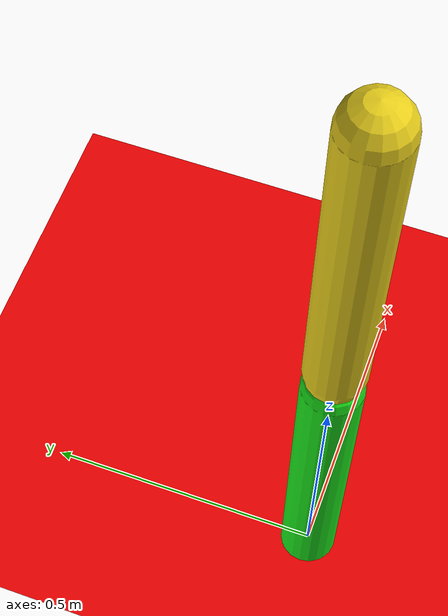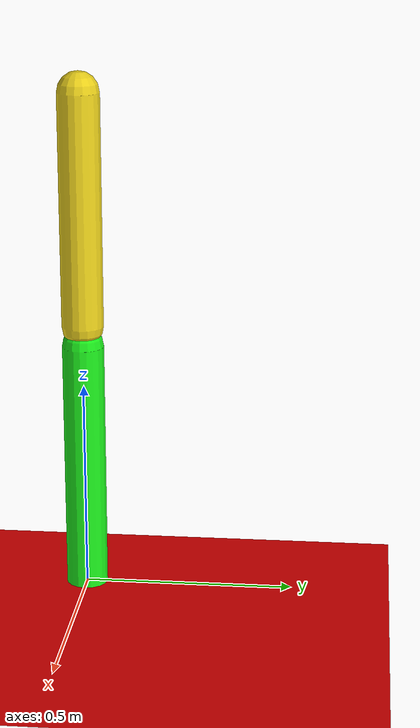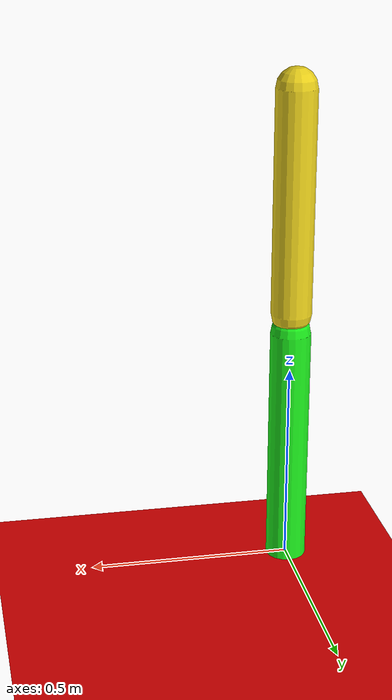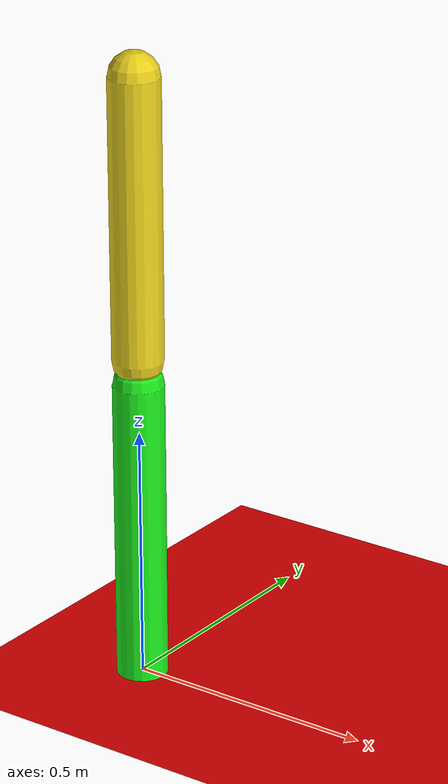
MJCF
<mujoco model="twolinkman">
<compiler coordinate="global" inertiafromgeom="true" angle="degree"/>
<default>
    <joint limited="true" damping="1" armature="0"/>
    <motor ctrlrange="-.4 .4" ctrllimited="true"/>
</default>
<option timestep="0.002" iterations="50" solver="PGS">
    <flag energy="enable"/>
</option>
<worldbody>
    <light diffuse=".5 .5 .5" pos="0 0 3" dir="0 0 -1"/>
    <geom type="plane" size="1 1 0.1" rgba=".9 0 0 1"/>
    <body>
        <joint name="joint1" type="hinge" pos="0 0 0" axis="0 1 0" range="-90 90" damping="5" stiffness="20" armature="0.02"/>
        <geom name="link1" type="capsule" fromto="0 0 0 0 0 0.6" size=".05" rgba=".1 .9 .1 1"/>
    <body>
        <joint name="joint2" type="hinge" pos="0 0 0.65" axis="0 1 0" range="-90 90" damping="5" stiffness="20" armature="0.02"/>
        <geom name="link2" type="capsule" fromto="0 0 0.65 0.0 0 1.2" size=".05" rgba=".9 .8 .1 1"/>
    </body>
    </body>
</worldbody>
<actuator>
<!--  ================= Torque actuators ================= -->

    <motor name="joint1" gear="200" joint="joint1"/>
    <motor name="joint2" gear="200" joint="joint2"/>

 <!--  ================= Position actuators ================= -->

</actuator>
</mujoco>
